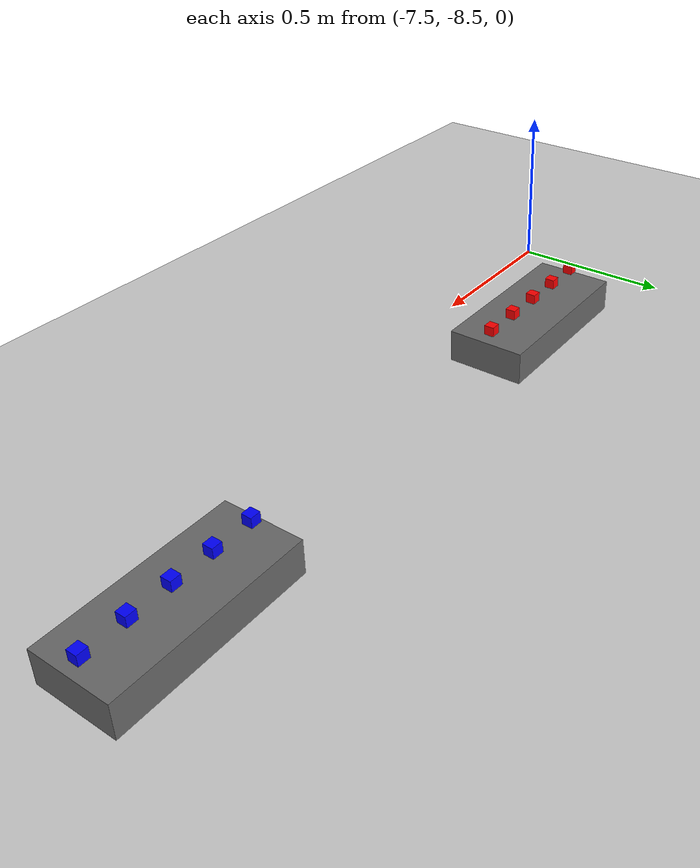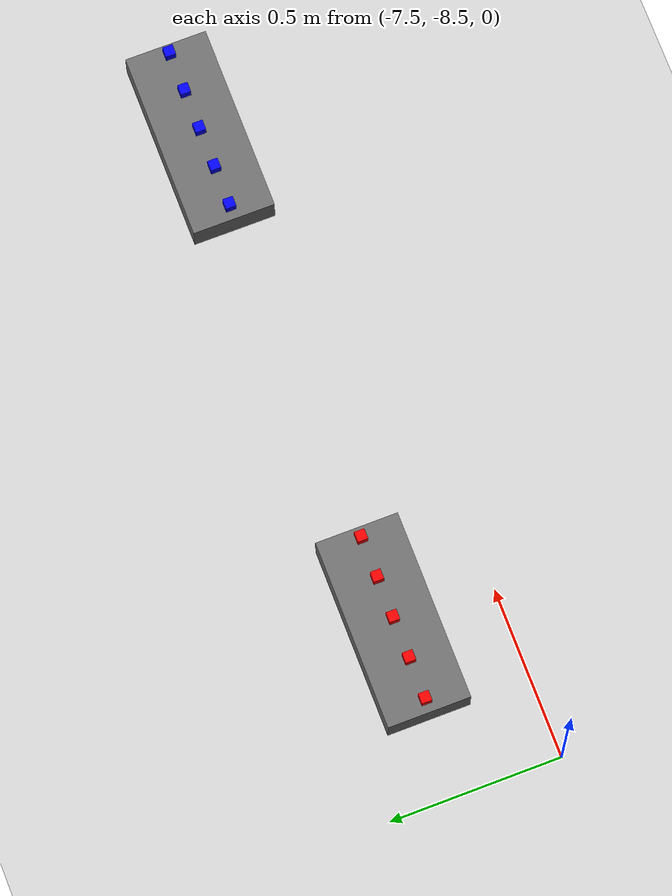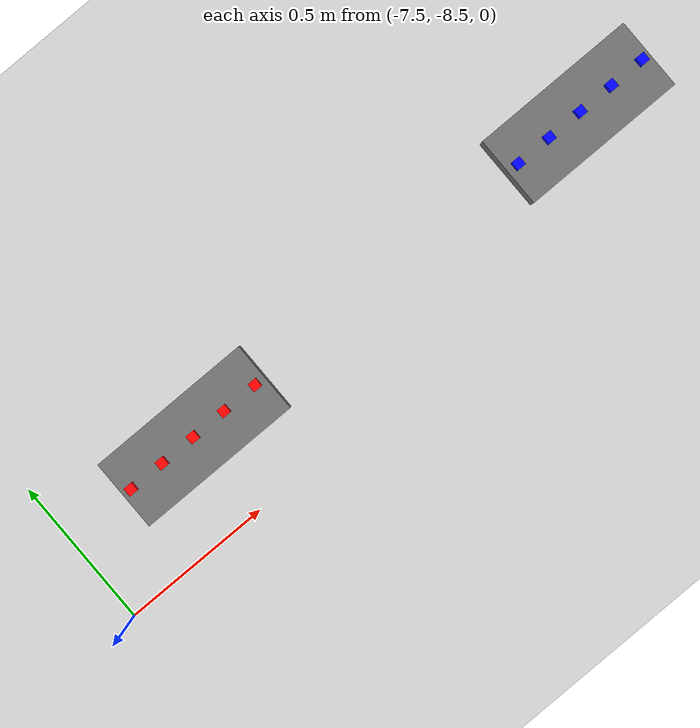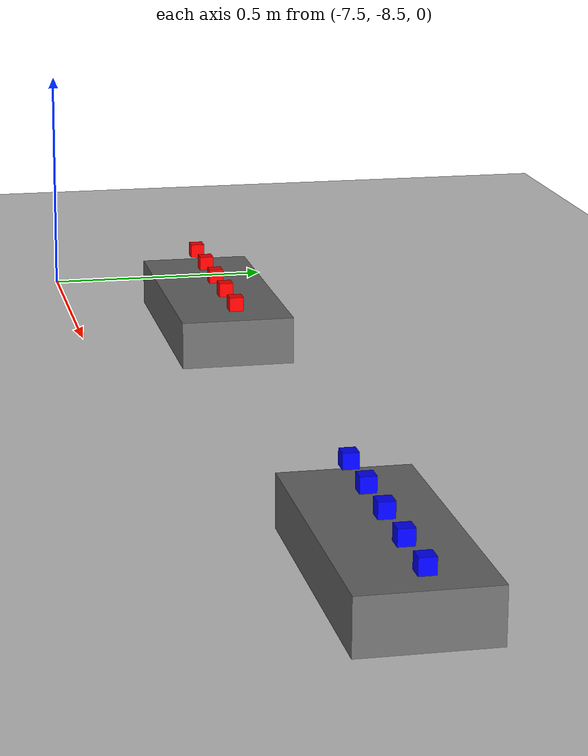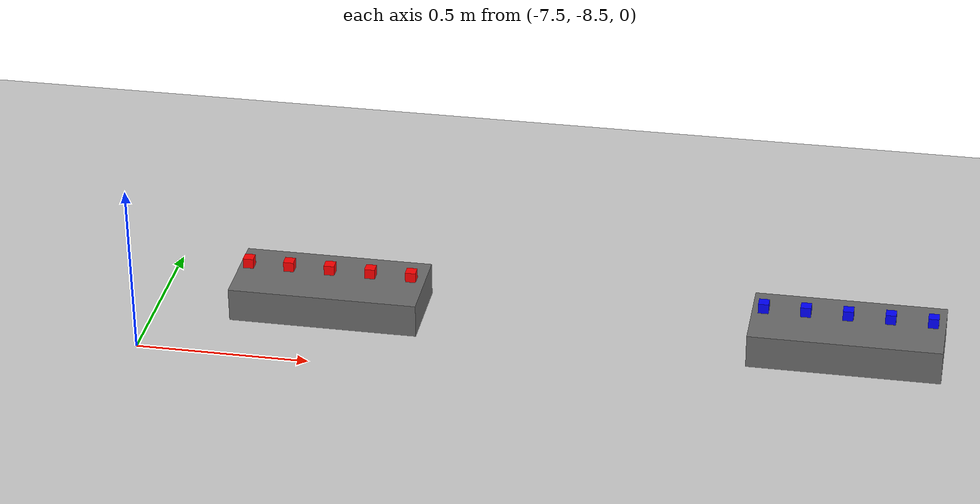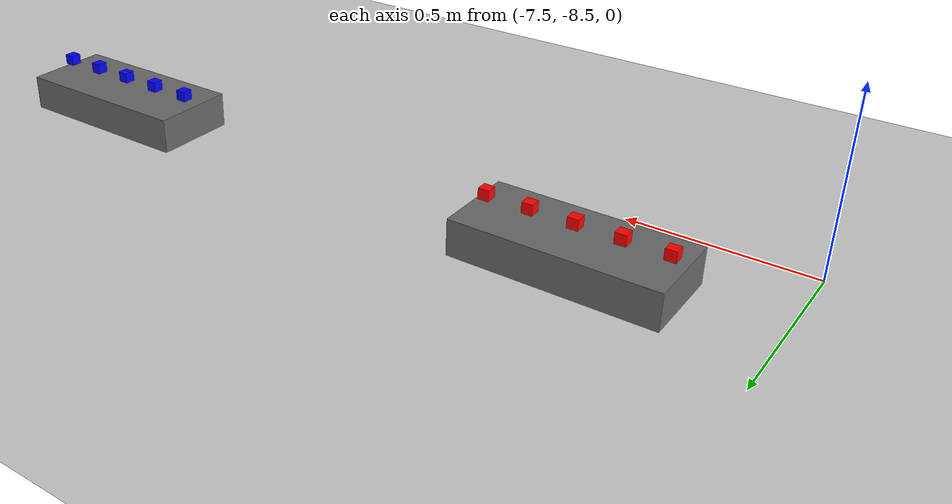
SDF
<sdf version="1.4">
 <world name="default">
  <model name="ground_plane">
   <static>1</static>
   <link name="link">
    <collision name="collision">
     <geometry><plane><normal>0 0 1</normal><size>100 100</size></plane></geometry>
     <surface><friction><ode><mu>100</mu><mu2>50</mu2></ode></friction></surface>
    </collision>
    <visual name="visual">
     <cast_shadows>0</cast_shadows>
     <geometry><plane><normal>0 0 1</normal><size>100 100</size></plane></geometry>
     <material>
      <script><uri>file://media/materials/scripts/gazebo.material</uri><name>Gazebo/Grey</name></script>
     </material>
    </visual>
    <velocity_decay><linear>0</linear><angular>0</angular></velocity_decay>
   </link>
  </model>
  <model name="competition_red_pickup_shelf">
   <static>true</static>
   <pose>-7.00 -8.20 0.05 0 0 1.5708</pose>
   <link name="shelf">
    <collision name="collision">
     <geometry><box><size>0.24 0.55 0.10</size></box></geometry>
     <surface><friction><ode><mu>5.0</mu><mu2>5.0</mu2></ode></friction></surface>
    </collision>
    <visual name="visual">
     <geometry><box><size>0.24 0.55 0.10</size></box></geometry>
     <material><ambient>0.32 0.32 0.32 1</ambient><diffuse>0.42 0.42 0.42 1</diffuse></material>
    </visual>
   </link>
  </model>
  <model name="competition_blue_pickup_shelf">
   <static>true</static>
   <pose>-5.50 -8.20 0.05 0 0 1.5708</pose>
   <link name="shelf">
    <collision name="collision">
     <geometry><box><size>0.24 0.55 0.10</size></box></geometry>
     <surface><friction><ode><mu>5.0</mu><mu2>5.0</mu2></ode></friction></surface>
    </collision>
    <visual name="visual">
     <geometry><box><size>0.24 0.55 0.10</size></box></geometry>
     <material><ambient>0.32 0.32 0.32 1</ambient><diffuse>0.42 0.42 0.42 1</diffuse></material>
    </visual>
   </link>
  </model>
  <model name="red_cube_1">
   <pose>-7.00 -8.2 0.13 0 0 0</pose>
   <link name="link">
    <inertial><mass>0.1</mass></inertial>
    <collision name="collision">
     <geometry><box><size>0.03 0.03 0.03</size></box></geometry>
     <surface><friction><ode><mu>5.0</mu><mu2>5.0</mu2></ode></friction></surface>
    </collision>
    <visual name="visual">
     <geometry><box><size>0.03 0.03 0.03</size></box></geometry>
     <material><ambient>1 0 0 1</ambient><diffuse>1 0 0 1</diffuse></material>
    </visual>
   </link>
  </model>
  <model name="red_cube_2">
   <pose>-6.88 -8.2 0.13 0 0 0</pose>
   <link name="link">
    <inertial><mass>0.1</mass></inertial>
    <collision name="collision">
     <geometry><box><size>0.03 0.03 0.03</size></box></geometry>
     <surface><friction><ode><mu>5.0</mu><mu2>5.0</mu2></ode></friction></surface>
    </collision>
    <visual name="visual">
     <geometry><box><size>0.03 0.03 0.03</size></box></geometry>
     <material><ambient>1 0 0 1</ambient><diffuse>1 0 0 1</diffuse></material>
    </visual>
   </link>
  </model>
  <model name="red_cube_3">
   <pose>-7.12 -8.2 0.13 0 0 0</pose>
   <link name="link">
    <inertial><mass>0.1</mass></inertial>
    <collision name="collision">
     <geometry><box><size>0.03 0.03 0.03</size></box></geometry>
     <surface><friction><ode><mu>5.0</mu><mu2>5.0</mu2></ode></friction></surface>
    </collision>
    <visual name="visual">
     <geometry><box><size>0.03 0.03 0.03</size></box></geometry>
     <material><ambient>1 0 0 1</ambient><diffuse>1 0 0 1</diffuse></material>
    </visual>
   </link>
  </model>
  <model name="red_cube_4">
   <pose>-6.76 -8.2 0.13 0 0 0</pose>
   <link name="link">
    <inertial><mass>0.1</mass></inertial>
    <collision name="collision">
     <geometry><box><size>0.03 0.03 0.03</size></box></geometry>
     <surface><friction><ode><mu>5.0</mu><mu2>5.0</mu2></ode></friction></surface>
    </collision>
    <visual name="visual">
     <geometry><box><size>0.03 0.03 0.03</size></box></geometry>
     <material><ambient>1 0 0 1</ambient><diffuse>1 0 0 1</diffuse></material>
    </visual>
   </link>
  </model>
  <model name="red_cube_5">
   <pose>-7.24 -8.2 0.13 0 0 0</pose>
   <link name="link">
    <inertial><mass>0.1</mass></inertial>
    <collision name="collision">
     <geometry><box><size>0.03 0.03 0.03</size></box></geometry>
     <surface><friction><ode><mu>5.0</mu><mu2>5.0</mu2></ode></friction></surface>
    </collision>
    <visual name="visual">
     <geometry><box><size>0.03 0.03 0.03</size></box></geometry>
     <material><ambient>1 0 0 1</ambient><diffuse>1 0 0 1</diffuse></material>
    </visual>
   </link>
  </model>
  <model name="blue_cube_1">
   <pose>-5.50 -8.2 0.13 0 0 0</pose>
   <link name="link">
    <inertial><mass>0.1</mass></inertial>
    <collision name="collision">
     <geometry><box><size>0.03 0.03 0.03</size></box></geometry>
     <surface><friction><ode><mu>5.0</mu><mu2>5.0</mu2></ode></friction></surface>
    </collision>
    <visual name="visual">
     <geometry><box><size>0.03 0.03 0.03</size></box></geometry>
     <material><ambient>0 0 1 1</ambient><diffuse>0 0 1 1</diffuse></material>
    </visual>
   </link>
  </model>
  <model name="blue_cube_2">
   <pose>-5.38 -8.2 0.13 0 0 0</pose>
   <link name="link">
    <inertial><mass>0.1</mass></inertial>
    <collision name="collision">
     <geometry><box><size>0.03 0.03 0.03</size></box></geometry>
     <surface><friction><ode><mu>5.0</mu><mu2>5.0</mu2></ode></friction></surface>
    </collision>
    <visual name="visual">
     <geometry><box><size>0.03 0.03 0.03</size></box></geometry>
     <material><ambient>0 0 1 1</ambient><diffuse>0 0 1 1</diffuse></material>
    </visual>
   </link>
  </model>
  <model name="blue_cube_3">
   <pose>-5.62 -8.2 0.13 0 0 0</pose>
   <link name="link">
    <inertial><mass>0.1</mass></inertial>
    <collision name="collision">
     <geometry><box><size>0.03 0.03 0.03</size></box></geometry>
     <surface><friction><ode><mu>5.0</mu><mu2>5.0</mu2></ode></friction></surface>
    </collision>
    <visual name="visual">
     <geometry><box><size>0.03 0.03 0.03</size></box></geometry>
     <material><ambient>0 0 1 1</ambient><diffuse>0 0 1 1</diffuse></material>
    </visual>
   </link>
  </model>
  <model name="blue_cube_4">
   <pose>-5.26 -8.2 0.13 0 0 0</pose>
   <link name="link">
    <inertial><mass>0.1</mass></inertial>
    <collision name="collision">
     <geometry><box><size>0.03 0.03 0.03</size></box></geometry>
     <surface><friction><ode><mu>5.0</mu><mu2>5.0</mu2></ode></friction></surface>
    </collision>
    <visual name="visual">
     <geometry><box><size>0.03 0.03 0.03</size></box></geometry>
     <material><ambient>0 0 1 1</ambient><diffuse>0 0 1 1</diffuse></material>
    </visual>
   </link>
  </model>
  <model name="blue_cube_5">
   <pose>-5.74 -8.2 0.13 0 0 0</pose>
   <link name="link">
    <inertial><mass>0.1</mass></inertial>
    <collision name="collision">
     <geometry><box><size>0.03 0.03 0.03</size></box></geometry>
     <surface><friction><ode><mu>5.0</mu><mu2>5.0</mu2></ode></friction></surface>
    </collision>
    <visual name="visual">
     <geometry><box><size>0.03 0.03 0.03</size></box></geometry>
     <material><ambient>0 0 1 1</ambient><diffuse>0 0 1 1</diffuse></material>
    </visual>
   </link>
  </model>
 </world>
</sdf>
